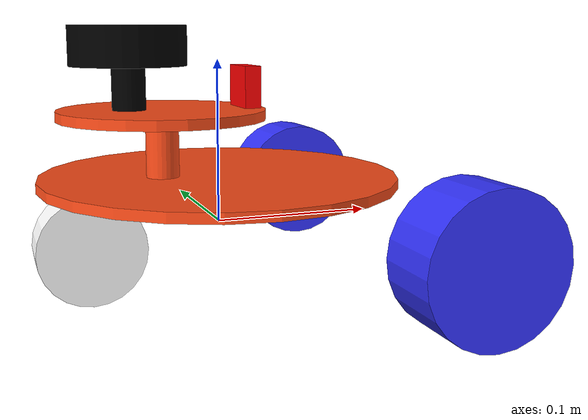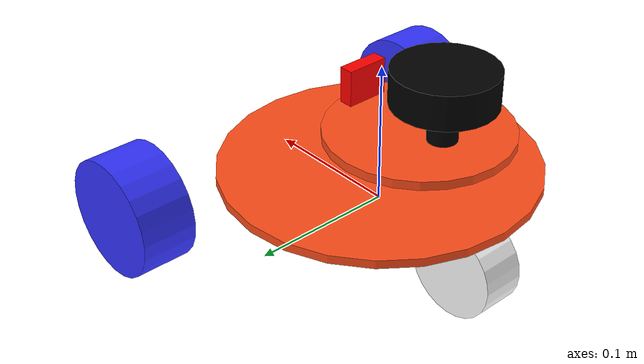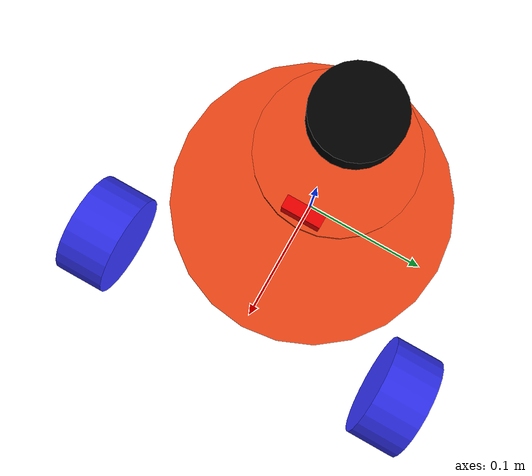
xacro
<?xml version="1.0"?>
<robot xmlns:xacro="http://www.ros.org/wiki/xacro"  name="robot">

    <xacro:arg name="use_ros2_control" default="true"/>
    <xacro:arg name="sim_mode" default="false"/>

    <xacro:include filename="robot_all.xacro" />

    <xacro:if value="$(arg use_ros2_control)">
        <xacro:include filename="ros2_control.xacro" />
    </xacro:if>
    <xacro:unless value="$(arg use_ros2_control)">
        <xacro:include filename="gazebo_control.xacro" />
    </xacro:unless>
</robot>

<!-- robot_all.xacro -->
<robot xmlns:xacro="http://www.ros.org/wiki/xacro">

    <xacro:include filename="inertial_macros.xacro" />

    <xacro:property name="chassis_radius" value="0.110" />
    <xacro:property name="chassis_thickness" value="0.006" />
    <xacro:property name="chassis_mass" value="1.0" />

    <xacro:property name="lidar_plate_radius" value="0.0625" />
    <xacro:property name="lidar_plate_thickness" value="${chassis_thickness}" />
    <xacro:property name="lidar_plate_offset_x" value="0.035" />
    <xacro:property name="lidar_plate_offset_z" value="0.041" />

    <xacro:property name="lidar_radius" value="0.0346" />
    <xacro:property name="lidar_thickness" value="0.0235" />
    <xacro:property name="lidar_offset_x" value="0.01954" />
    <xacro:property name="lidar_offset_z" value="0.0436" />

    <xacro:property name="camera_offset_x" value="${0.053517-0.00075}" />
    <xacro:property name="camera_offset_z" value="0.00125" />

    <xacro:property name="wheel_radius" value="0.0425" />
    <xacro:property name="wheel_thickness" value="0.040" />
    <xacro:property name="wheel_mass" value="0.05" />
    <xacro:property name="wheel_offset_y" value="${0.112 + wheel_thickness/2}" />
    <xacro:property name="wheel_offset_z" value="0.024" />
    <xacro:property name="wheel_offset_x" value="0.1" />

    <xacro:property name="caster_wheel_radius" value="0.0325" />
    <xacro:property name="caster_wheel_thickness" value="0.030" />
    <xacro:property name="caster_wheel_mass" value="0.01" />

    <xacro:property name="caster_wheel_offset_x" value="0.08036" />
    <xacro:property name="caster_wheel_offset_z"
        value="${wheel_offset_z + wheel_radius - caster_wheel_radius}" />

    <material name="white">
        <color rgba="1 1 1 1" />
    </material>

    <material name="orange">
        <color rgba="1 0.3 0.1 1" />
    </material>

    <material name="blue">
        <color rgba="0.2 0.2 1 1" />
    </material>

    <material name="black">
        <color rgba="0 0 0 1" />
    </material>

    <material name="red">
        <color rgba="1 0 0 1" />
    </material>

    <link name="base_link">
    </link>

    <joint name="base_footprint_joint" type="fixed">
        <parent link="base_link" />
        <child link="base_footprint" />
        <origin xyz="0 0 0" rpy="0 0 0" />
    </joint>

    <link name="base_footprint">
    </link>

    <joint name="chassis_joint" type="fixed">
        <parent link="base_link" />
        <child link="chassis" />
        <origin xyz="0 0 ${wheel_offset_z}" />
    </joint>

    <link name="chassis">
        <visual>
            <origin xyz="0 0 ${chassis_thickness/2}" />
            <geometry>
                <cylinder radius="${chassis_radius}" length="${chassis_thickness}" />
            </geometry>
            <material name="orange" />
        </visual>
        <collision>
            <origin xyz="0 0 ${chassis_thickness/2}" />
            <geometry>
                <cylinder radius="${chassis_radius}" length="${chassis_thickness}" />
            </geometry>
        </collision>
        <xacro:inertial_cylinder mass="${chassis_mass}" radius="${chassis_radius}"
            length="${chassis_thickness}">
            <origin xyz="0 0 ${chassis_thickness/2}" rpy="0 0 0" />
        </xacro:inertial_cylinder>
    </link>

    <gazebo reference="chassis">
        <material>Gazebo/Orange</material>
    </gazebo>

    <joint name="lidar_plate_joint" type="fixed">
        <parent link="chassis" />
        <child link="lidar_plate" />
        <origin xyz="${-lidar_plate_offset_x} 0 ${lidar_plate_offset_z}" />
    </joint>

    <link name="lidar_plate">
        <visual>
            <origin xyz="0 0 ${chassis_thickness/2}" />
            <geometry>
                <cylinder radius="${lidar_plate_radius}" length="${chassis_thickness}" />
            </geometry>
            <material name="orange" />
        </visual>
        <visual>
            <origin xyz="0 0 ${-lidar_plate_offset_z/2}" />
            <geometry>
                <cylinder radius="0.01" length="${lidar_plate_offset_z}" />
            </geometry>
            <material name="orange" />
        </visual>
        <collision>
            <origin xyz="0 0 ${chassis_thickness/2}" />
            <geometry>
                <cylinder radius="${lidar_plate_radius}" length="${chassis_thickness}" />
            </geometry>
        </collision>
        <xacro:inertial_cylinder mass="${chassis_mass}" radius="${lidar_plate_radius}"
            length="${chassis_thickness}">
            <origin xyz="0 0 ${lidar_plate_thickness/2}" rpy="0 0 0" />
        </xacro:inertial_cylinder>
    </link>

    <gazebo reference="lidar_plate">
        <material>Gazebo/Orange</material>
    </gazebo>
<joint name="left_wheel_joint" type="continuous">
    <parent link="base_link" />
    <child link="left_wheel" />
    <origin xyz="${wheel_offset_x} ${wheel_offset_y} 0" rpy="-${pi/2} 0 0" />
    <axis xyz="0 0 1" />
</joint>

    <link name="left_wheel">
        <visual>
            <geometry>
                <cylinder radius="${wheel_radius}" length="${wheel_thickness}" />
            </geometry>
            <material name="blue" />
        </visual>
        <collision>
            <origin xyz="0 0 0" rpy="0 0 0" />
            <geometry>
                <cylinder radius="${wheel_radius}" length="${wheel_thickness}" />
            </geometry>
        </collision>
        <xacro:inertial_cylinder mass="${wheel_mass}" radius="${wheel_radius}" length="${wheel_thickness}">
            <origin xyz="0 0 0" rpy="0 0 0" />
        </xacro:inertial_cylinder>
    </link>

    <gazebo reference="left_wheel">
        <material>Gazebo/Blue</material>
    </gazebo>

    <joint name="right_wheel_joint" type="continuous">
        <parent link="base_link" />
        <child link="right_wheel" />
        <origin xyz="${wheel_offset_x} ${-wheel_offset_y} 0" rpy="${pi/2} 0 0" />
        <axis xyz="0 0 -1" />
    </joint>

    <link name="right_wheel">
        <visual>
            <geometry>
                <cylinder radius="${wheel_radius}" length="${wheel_thickness}" />
            </geometry>
            <material name="blue" />
        </visual>
        <collision>
            <origin xyz="0 0 0" rpy="0 0 0" />
            <geometry>
                <cylinder radius="${wheel_radius}" length="${wheel_thickness}" />
            </geometry>
        </collision>
        <xacro:inertial_cylinder mass="${wheel_mass}" radius="${wheel_radius}" length="${wheel_thickness}">
            <origin xyz="0 0 0" rpy="0 0 0" />
        </xacro:inertial_cylinder>
    </link>

    <gazebo reference="right_wheel">
        <material>Gazebo/Blue</material>
    </gazebo>

    <joint name="back_caster_wheel_joint" type="fixed">
        <parent link="chassis" />
        <child link="back_caster_wheel" />
        <origin xyz="${-caster_wheel_offset_x} 0 ${-caster_wheel_offset_z}" rpy="${pi/2} 0 0" />
        <axis xyz="0 0 1" />
    </joint>

    <link name="back_caster_wheel">
        <visual>
            <geometry>
                <cylinder radius="${caster_wheel_radius}" length="${caster_wheel_thickness}" />
            </geometry>
            <material name="white" />
        </visual>
        <collision>
            <geometry>
                <sphere radius="${caster_wheel_radius}" />
            </geometry>
        </collision>
        <xacro:inertial_sphere mass="${caster_wheel_mass}" radius="${caster_wheel_radius}">
            <origin xyz="0 0 0" rpy="0 0 0" />
        </xacro:inertial_sphere>
    </link>

    <gazebo reference="back_caster_wheel">
        <material>Gazebo/White</material>
        <mu1 value="0.001" />
        <mu2 value="0.001" />
    </gazebo>

    <joint name="laser_joint" type="fixed">
        <parent link="lidar_plate" />
        <child link="laser_frame" />
        <origin xyz="${-lidar_offset_x} 0 ${lidar_offset_z}" rpy="0 0 0" />
    </joint>

    <link name="laser_frame">
        <visual>
            <geometry>
                <cylinder radius="${lidar_radius}" length="${lidar_thickness}" />
            </geometry>
            <material name="black" />
        </visual>
        <visual>
            <origin xyz="0 0 ${-lidar_offset_z/2}" />
            <geometry>
                <cylinder radius="0.01" length="${lidar_offset_z}" />
            </geometry>
            <material name="black" />
        </visual>
        <collision>
            <geometry>
                <cylinder radius="${lidar_radius}" length="${lidar_thickness}" />
            </geometry>
        </collision>
        <xacro:inertial_cylinder mass="0.1" length="${lidar_thickness}" radius="${lidar_radius}">
            <origin xyz="0 0 0" rpy="0 0 0" />
        </xacro:inertial_cylinder>
    </link>

    <gazebo reference="laser_frame">
        <material>Gazebo/Black</material>

        <sensor name="laser" type="ray">
            <pose> 0 0 0 0 0 0 </pose>
            <visualize>false</visualize>
            <update_rate>10</update_rate>
            <ray>
                <scan>
                    <horizontal>
                        <samples>360</samples>
                        <min_angle>-3.14</min_angle>
                        <max_angle>3.14</max_angle>
                    </horizontal>
                </scan>
                <range>
                    <min>0.3</min>
                    <max>12</max>
                </range>
            </ray>
            <plugin name="laser_controller" filename="libgazebo_ros_ray_sensor.so">
                <ros>
                    <argument>~/out:=scan</argument>
                </ros>
                <output_type>sensor_msgs/LaserScan</output_type>
                <frame_name>laser_frame</frame_name>
            </plugin>
        </sensor>
    </gazebo>

    <joint name="camera_joint" type="fixed">
        <parent link="lidar_plate" />
        <child link="camera_link" />
        <origin xyz="${camera_offset_x} 0 ${camera_offset_z + 0.03/2}" rpy="0 0 0" />
    </joint>

    <link name="camera_link">
        <visual>
            <geometry>
                <box size="0.010 0.03 0.03" />
            </geometry>
            <material name="red" />
        </visual>
    </link>

    <gazebo reference="camera_link">
        <material>Gazebo/Red</material>
    </gazebo>

</robot>
